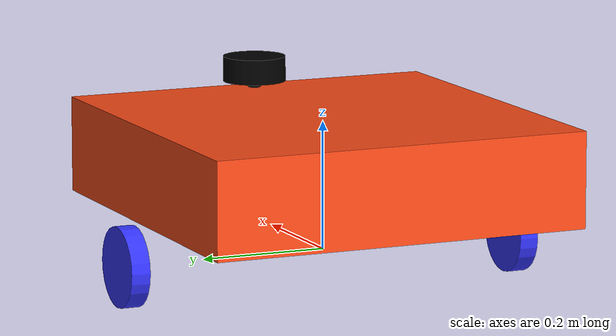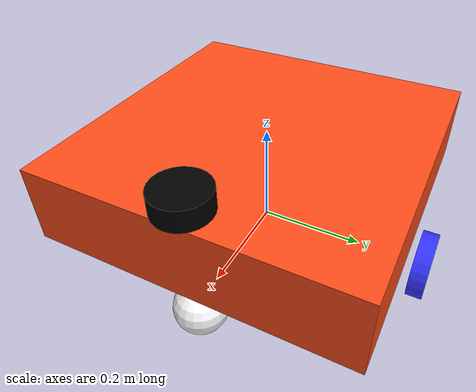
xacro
<?xml version="1.0"?>
<robot xmlns:xacro="http://www.ros.org/wiki/xacro"  name="robot">

    <xacro:arg name="use_ros2_control" default="true"/>
    <xacro:arg name="sim_mode" default="true"/>

    <xacro:include filename="robot_core.xacro"/>
    <xacro:if value="$(arg use_ros2_control)">
        <xacro:include filename="ros2_control.xacro" />
    </xacro:if>
    <xacro:unless value="$(arg use_ros2_control)">
        <xacro:include filename="gazebo_control.xacro" />
    </xacro:unless>

    <xacro:include filename="lidar.xacro" />

    <xacro:include filename="imu.xacro" />
</robot>

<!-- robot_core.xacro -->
<robot xmlns:xacro="http://www.ros.org/wiki/xacro" >
    <xacro:include filename="inertial_macros.xacro"/>

    <xacro:property name="chassis_length" value="0.6"/>
    <xacro:property name="chassis_width" value="0.6"/>
    <xacro:property name="chassis_height" value="0.15"/>
    <xacro:property name="chassis_mass" value="0.5"/>
    <xacro:property name="wheel_radius" value="0.0625"/>
    <xacro:property name="wheel_thickness" value="0.03"/>
    <xacro:property name="wheel_mass" value="1.0"/>
    <xacro:property name="wheel_offset_x" value="0.3"/>
    <xacro:property name="wheel_offset_y" value="0.326"/>
    <xacro:property name="wheel_offset_z" value="-0.0625"/>
    <xacro:property name="caster_wheel_radius" value="0.05"/>
    <xacro:property name="caster_wheel_mass" value="0.5"/>
    <xacro:property name="caster_wheel_offset_x" value="0.555"/>
    <xacro:property name="caster_wheel_offset_z" value="${wheel_offset_z - wheel_radius + caster_wheel_radius}"/>

    <material name="white">
        <color rgba="1 1 1 1"/>
    </material>

    <material name="orange">
        <color rgba="1 0.3 0.1 1"/>
    </material>
    <material name="blue">
        <color rgba="0.2 0.2 1 1"/>
    </material>
    <material name="black">
        <color rgba="0 0 0 1"/>
    </material>
    <!--  BASE LINK-->
    <link name="base_link">

    </link>

    <!-- BASE_FOOTPRINT LINK -->

    <joint name="base_footprint_joint" type="fixed">
        <parent link="base_link"/>
        <child link="base_footprint"/>
        <origin xyz="0 0 0" rpy="0 0 0"/>
    </joint>

    <link name="base_footprint">
    </link>

    <!--  CHASSIS LINK-->
    <joint name="chassis_joint" type="fixed">
        <parent link="base_link"/>
        <child link="chassis"/>
        <origin xyz="${-wheel_offset_x} 0 ${-wheel_offset_z}"/>

    </joint>
    <link name="chassis">
        <visual>
            <origin xyz="${chassis_length/2} 0 ${chassis_height/2}"/><!-- Half of a length and Height-->

            <geometry>
                <box size="${chassis_length} ${chassis_width} ${chassis_height}"/>

            </geometry>
            <material name="orange"/>
        </visual>
        <collision>
            <origin xyz="${chassis_length/2} 0 ${chassis_height/2}"/><!-- Half of a length and Height-->

            <geometry>
                <box size="${chassis_length} ${chassis_width} ${chassis_height}"/>

            </geometry>

        </collision>
        <xacro:inertial_box mass="${chassis_mass}" x="${chassis_length}" y="${chassis_width}" z="${chassis_height}">
            <origin xyz = "${chassis_length/2} 0 ${chassis_height/2}" rpy="0 0 0"/>
        </xacro:inertial_box>
    </link>
    <gazebo reference ="chassis">
        <material>Gazebo/OrangeTransparent</material>
    </gazebo>
    <!-- LEFT WHEEL LINK-->

    <joint name="left_wheel_joint" type="continuous">
        <parent link="base_link"/>
        <child link="left_wheel"/>
        <origin xyz="0 ${wheel_offset_y} 0" rpy="-${pi/2} 0 0"/>
        <axis xyz="0 0 1"/>

    </joint>
    <link name="left_wheel">
        <visual>
            <geometry>
                <cylinder radius="${wheel_radius}" length="${wheel_thickness}"/>

            </geometry>
            <material name="blue"/>
        </visual>
        <collision>
             <geometry>
                <sphere radius="${wheel_radius}"/>
            </geometry>

        </collision>
        <xacro:inertial_cylinder mass="${wheel_mass}" length="${wheel_thickness}" radius="${wheel_radius}">
            <origin xyz="0 0 0" rpy="0 0 0"/>
        </xacro:inertial_cylinder>
    </link>
    <gazebo reference="left_wheel">
        <material>Gazebo/Blue</material>
    </gazebo>
    <!-- RIGHT WHEEL LINK-->

    <joint name="right_wheel_joint" type="continuous">
        <parent link="base_link"/>
        <child link="right_wheel"/>
        <origin xyz="0 ${-wheel_offset_y} 0" rpy="${pi/2} 0 0"/>
        <axis xyz="0 0 -1"/>

    </joint>
    <link name="right_wheel">
        <visual>
            <geometry>
                <cylinder radius="${wheel_radius}" length="${wheel_thickness}"/>

            </geometry>
            <material name="blue"/>
        </visual>
        <collision>
            <geometry>
                <sphere radius="${wheel_radius}"/>
            </geometry>

        </collision>
        <xacro:inertial_cylinder mass="${wheel_mass}" length="${wheel_thickness}" radius="${wheel_radius}">
            <origin xyz="0 0 0" rpy="0 0 0"/>
        </xacro:inertial_cylinder>
    </link>
    <gazebo reference="right_wheel">
        <material>Gazebo/Blue</material>
    </gazebo>
    <!--    CASTER WHEEL LINK-->
    <joint name="caster_wheel_joint" type="fixed">
        <parent link="chassis"/>
        <child link="caster_wheel"/>
        <origin xyz="${caster_wheel_offset_x} 0 ${caster_wheel_offset_z}"/>

    </joint>
    <link name="caster_wheel">
        <visual>
            <geometry>
               <sphere radius="${caster_wheel_radius}"/>

            </geometry>
            <material name="white"/>
        </visual>
        <collision>
            <geometry>
                <sphere radius="${caster_wheel_radius}"/>

            </geometry>

        </collision>
        <xacro:inertial_sphere mass="${caster_wheel_mass}" radius="${caster_wheel_radius}">
            <origin xyz="0 0 0" rpy="0 0 0"/>
        </xacro:inertial_sphere>
    </link>
    <gazebo reference="caster_wheel">
        <material>Gazebo/White</material>
        <mu1 value="0.001"/>
        <mu2 value="0.001"/>
    </gazebo>
</robot>

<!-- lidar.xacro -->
<robot xmlns:xacro="http://www.ros.org/wiki/xacro" >

    <joint name="laser_joint" type="fixed">
        <parent link="chassis"/>
        <child link="laser_frame"/>
        <origin xyz="0.57 0 0.18" rpy="0 0 0"/>
    </joint>

    <link name="laser_frame">
        <visual>
            <geometry>
                <cylinder radius="0.05" length="0.04"/>
            </geometry>
            <material name="black"/>
        </visual>
        <visual>
            <origin xyz="0 0 -0.05"/>
            <geometry>
                <cylinder radius="0.01" length="0.1"/>
            </geometry>
            <material name="black"/>
        </visual>
        <collision>
            <geometry>
                <cylinder radius="0.05" length="0.04"/>
            </geometry>
        </collision>
        <xacro:inertial_cylinder mass="0.1" length="0.04" radius="0.05">
            <origin xyz="0 0 0" rpy="0 0 0"/>
        </xacro:inertial_cylinder>
    </link>

    <gazebo reference="laser_frame">
        <material>Gazebo/Black</material>

        <sensor name="laser" type="ray">
            <pose> 0 0 0 0 0 0 </pose>
            <visualize>false</visualize>
            <update_rate>10</update_rate>
            <ray>
                <scan>
                    <horizontal>
                        <samples>360</samples>
                        <min_angle>-3.14</min_angle>
                        <max_angle>3.14</max_angle>
                    </horizontal>
                </scan>
                <range>
                    <min>0.3</min>
                    <max>12</max>
                </range>
            </ray>
            <plugin name="laser_controller" filename="libgazebo_ros_ray_sensor.so">
                <ros>
                    <argument>~/out:=scan</argument>
                </ros>
                <output_type>sensor_msgs/LaserScan</output_type>
                <frame_name>laser_frame</frame_name>
            </plugin>
        </sensor>
    </gazebo>

</robot>

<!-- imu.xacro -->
<robot xmlns:xacro="http://www.ros.org/wiki/xacro" >

    <joint name="imu_joint" type="fixed">
        <parent link="chassis"/>
        <child link="imu_frame"/>
        <origin xyz="0.3 0 0.03" rpy="0 0 0"/>
    </joint>

    <link name="imu_frame">
        <visual>
            <origin xyz="0 0 0"/><!-- Half of a length and Height-->

            <geometry>
                <box size="0.05 0.03 0.03"/>

            </geometry>
            <material name="blue"/>
        </visual>
        <collision>
            <origin xyz="0.025 0.015 0.015"/><!-- Half of a length and Height-->

            <geometry>
                <box size="0.05 0.03 0.03"/>

            </geometry>
            <material name="blue"/>

        </collision>
        <xacro:inertial_box mass="0.050" x="0.05" y="0.03" z="0.03">
            <origin xyz = "0.025 0.015 0.015" rpy="0 0 0"/>
        </xacro:inertial_box>
    </link>

    <gazebo reference="imu_frame">
        <material>Gazebo/Blue</material>
         <sensor name="imu_sensor" type="imu">
   <plugin filename="libgazebo_ros_imu_sensor.so" name="imu_plugin">
      <ros>
        <namespace>/demo</namespace>
        <remapping>~/out:=imu</remapping>
      </ros>
      <initial_orientation_as_reference>false</initial_orientation_as_reference>
    </plugin>
    <always_on>true</always_on>
    <update_rate>100</update_rate>
    <visualize>true</visualize>
    <imu>
      <angular_velocity>
        <x>
          <noise type="gaussian">
            <mean>0.0</mean>
            <stddev>2e-4</stddev>
            <bias_mean>0.0000075</bias_mean>
            <bias_stddev>0.0000008</bias_stddev>
          </noise>
        </x>
        <y>
          <noise type="gaussian">
            <mean>0.0</mean>
            <stddev>2e-4</stddev>
            <bias_mean>0.0000075</bias_mean>
            <bias_stddev>0.0000008</bias_stddev>
          </noise>
        </y>
        <z>
          <noise type="gaussian">
            <mean>0.0</mean>
            <stddev>2e-4</stddev>
            <bias_mean>0.0000075</bias_mean>
            <bias_stddev>0.0000008</bias_stddev>
          </noise>
        </z>
      </angular_velocity>
      <linear_acceleration>
        <x>
          <noise type="gaussian">
            <mean>0.0</mean>
            <stddev>1.7e-2</stddev>
            <bias_mean>0.1</bias_mean>
            <bias_stddev>0.001</bias_stddev>
          </noise>
        </x>
        <y>
          <noise type="gaussian">
            <mean>0.0</mean>
            <stddev>1.7e-2</stddev>
            <bias_mean>0.1</bias_mean>
            <bias_stddev>0.001</bias_stddev>
          </noise>
        </y>
        <z>
          <noise type="gaussian">
            <mean>0.0</mean>
            <stddev>1.7e-2</stddev>
            <bias_mean>0.1</bias_mean>
            <bias_stddev>0.001</bias_stddev>
          </noise>
        </z>
      </linear_acceleration>
    </imu>
  </sensor>
    </gazebo>

</robot>
